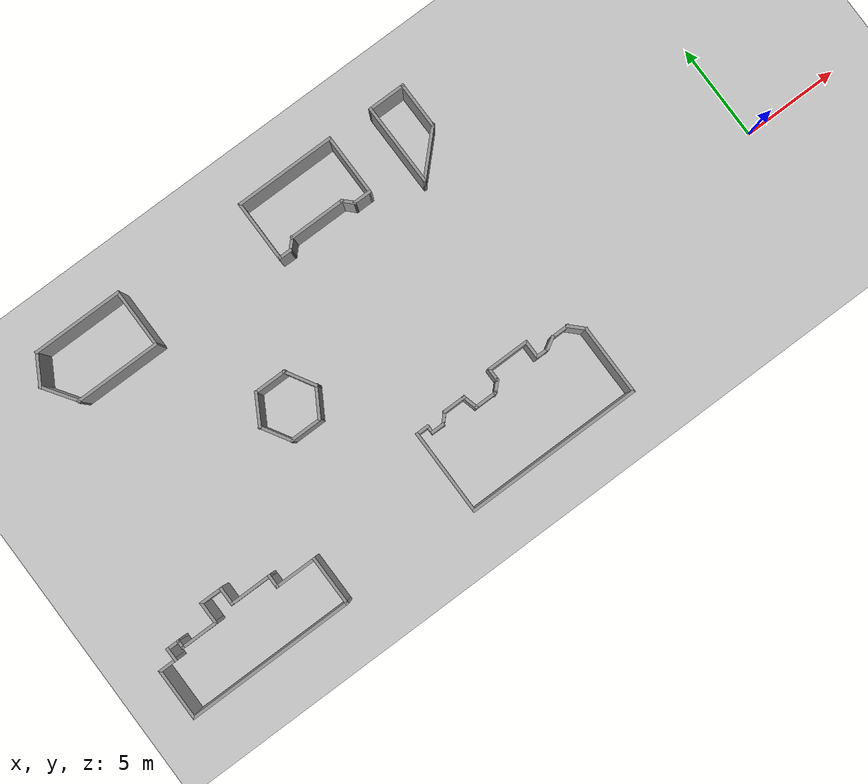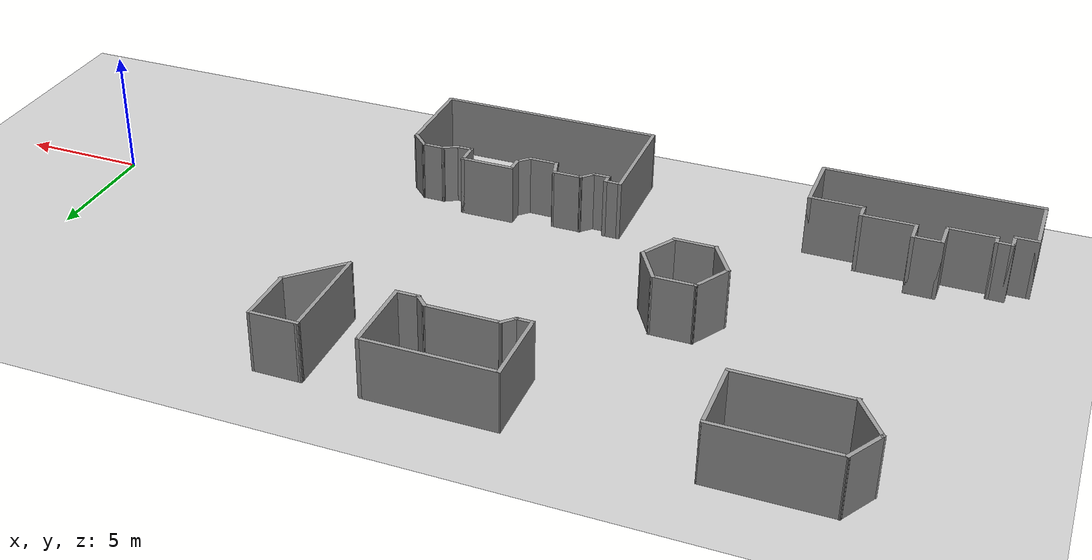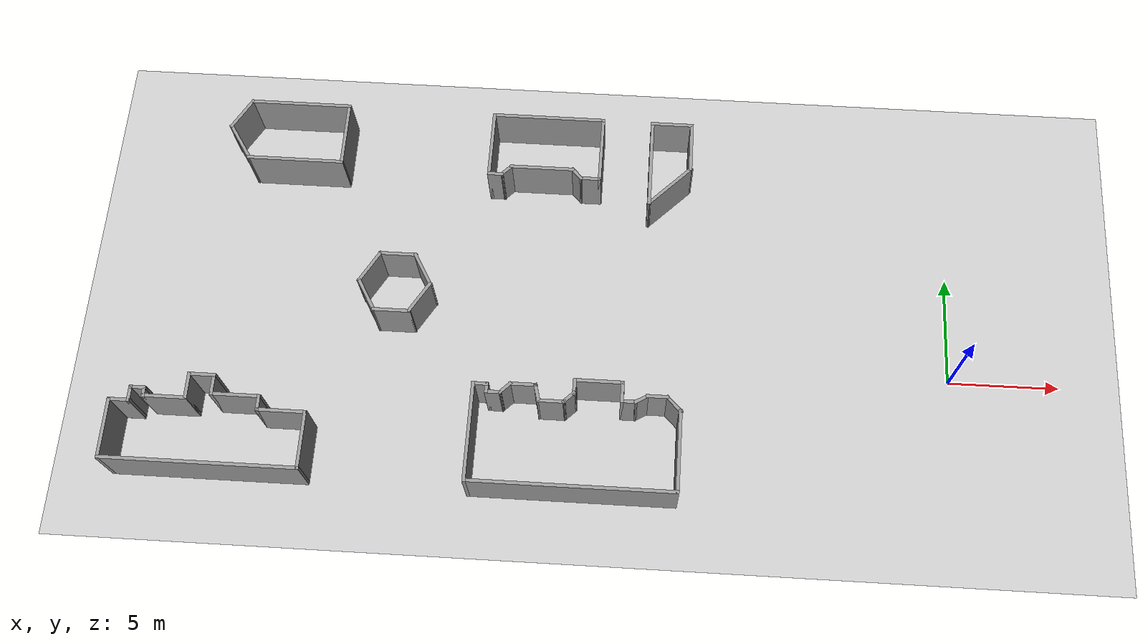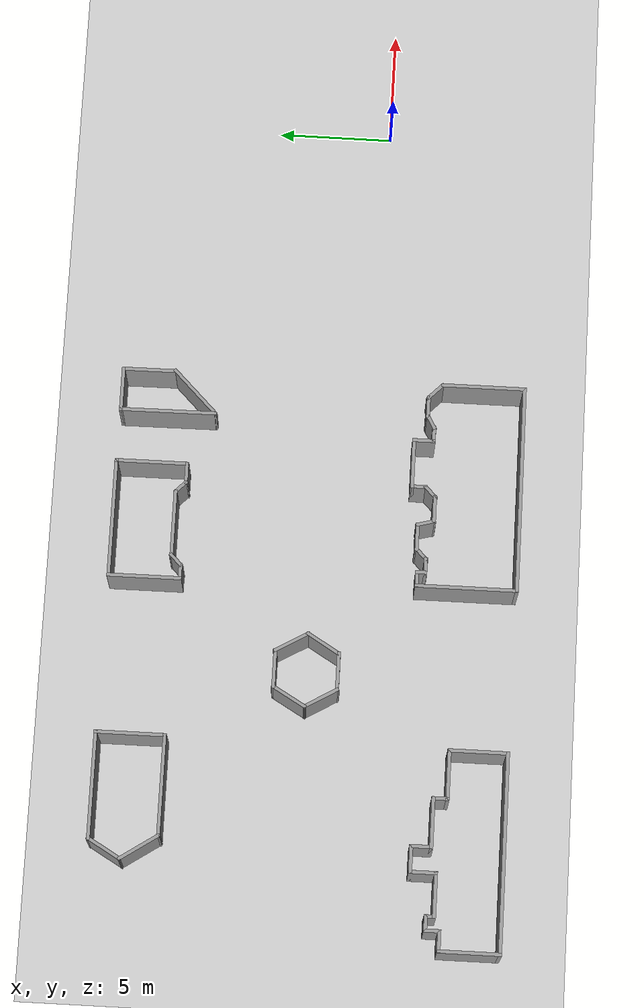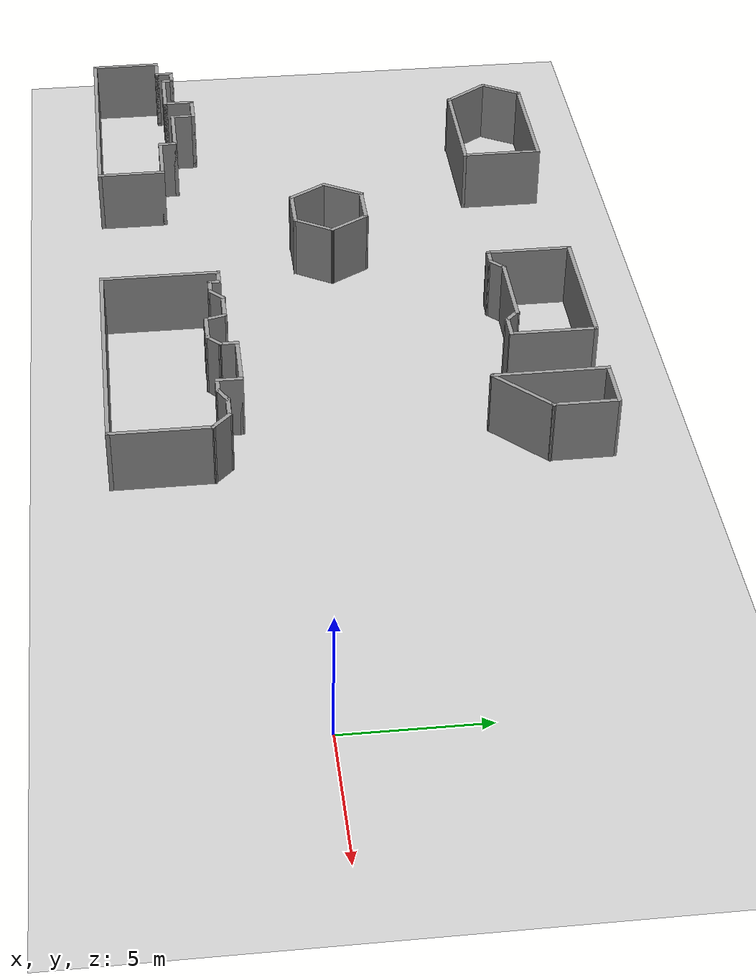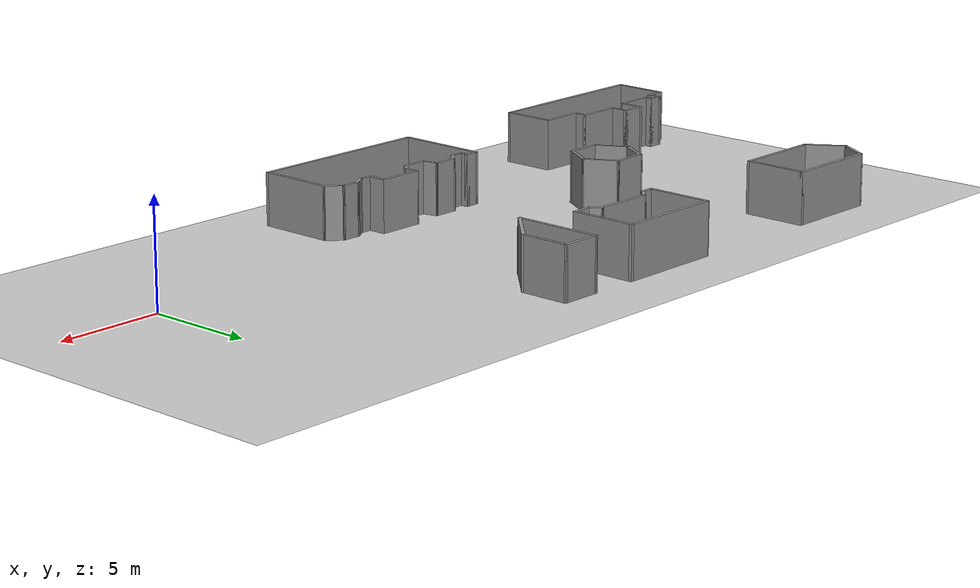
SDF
<sdf version="1.6">
 <world name="default">
  <model name="ground_plane">
   <static>1</static>
   <link name="link">
    <collision name="collision">
     <geometry><plane><normal>0 0 1</normal><size>100 100</size></plane></geometry>
     <surface><friction><ode><mu>100</mu><mu2>50</mu2></ode></friction></surface>
    </collision>
    <visual name="visual">
     <cast_shadows>0</cast_shadows>
     <geometry><plane><normal>0 0 1</normal><size>100 100</size></plane></geometry>
     <material>
      <script><uri>file://media/materials/scripts/gazebo.material</uri><name>Gazebo/Grey</name></script>
     </material>
    </visual>
   </link>
  </model>
  <model name="corridor1">
   <pose>-0.71562 2.39478 0 0 -0 0</pose>
   <link name="Wall_116">
    <collision name="Wall_116_Collision">
     <geometry><box><size>3.25 0.15 2.5</size></box></geometry>
     <pose>0 0 1.25 0 -0 0</pose>
    </collision>
    <visual name="Wall_116_Visual">
     <pose>0 0 1.25 0 -0 0</pose>
     <geometry><box><size>3.25 0.15 2.5</size></box></geometry>
     <material>
      <script><uri>file://media/materials/scripts/gazebo.material</uri><name>Gazebo/Grey</name></script>
      <ambient>1 1 1 1</ambient>
     </material>
     <meta><layer>0</layer></meta>
    </visual>
    <pose>-20.8032 7.35018 0 0 0 -1.5708</pose>
   </link>
   <link name="Wall_117">
    <collision name="Wall_117_Collision">
     <geometry><box><size>0.75 0.15 2.5</size></box></geometry>
     <pose>0 0 1.25 0 -0 0</pose>
    </collision>
    <visual name="Wall_117_Visual">
     <pose>0 0 1.25 0 -0 0</pose>
     <geometry><box><size>0.75 0.15 2.5</size></box></geometry>
     <material>
      <script><uri>file://media/materials/scripts/gazebo.material</uri><name>Gazebo/Grey</name></script>
      <ambient>1 1 1 1</ambient>
     </material>
     <meta><layer>0</layer></meta>
    </visual>
    <pose>-20.5032 5.80018 0 0 -0 0</pose>
   </link>
   <link name="Wall_118">
    <collision name="Wall_118_Collision">
     <geometry><box><size>0.75 0.15 2.5</size></box></geometry>
     <pose>0 0 1.25 0 -0 0</pose>
    </collision>
    <visual name="Wall_118_Visual">
     <pose>0 0 1.25 0 -0 0</pose>
     <geometry><box><size>0.75 0.15 2.5</size></box></geometry>
     <material>
      <script><uri>file://media/materials/scripts/gazebo.material</uri><name>Gazebo/Grey</name></script>
      <ambient>1 1 1 1</ambient>
     </material>
     <meta><layer>0</layer></meta>
    </visual>
    <pose>-19.991 6.01231 0 0 -0 0.785398</pose>
   </link>
   <link name="Wall_119">
    <collision name="Wall_119_Collision">
     <geometry><box><size>3 0.15 2.5</size></box></geometry>
     <pose>0 0 1.25 0 -0 0</pose>
    </collision>
    <visual name="Wall_119_Visual">
     <pose>0 0 1.25 0 -0 0</pose>
     <geometry><box><size>3 0.15 2.5</size></box></geometry>
     <material>
      <script><uri>file://media/materials/scripts/gazebo.material</uri><name>Gazebo/Grey</name></script>
      <ambient>1 1 1 1</ambient>
     </material>
     <meta><layer>0</layer></meta>
    </visual>
    <pose>-18.3539 6.22444 0 0 -0 0</pose>
   </link>
   <link name="Wall_120">
    <collision name="Wall_120_Collision">
     <geometry><box><size>0.75 0.15 2.5</size></box></geometry>
     <pose>0 0 1.25 0 -0 0</pose>
    </collision>
    <visual name="Wall_120_Visual">
     <pose>0 0 1.25 0 -0 0</pose>
     <geometry><box><size>0.75 0.15 2.5</size></box></geometry>
     <material>
      <script><uri>file://media/materials/scripts/gazebo.material</uri><name>Gazebo/Grey</name></script>
      <ambient>1 1 1 1</ambient>
     </material>
     <meta><layer>0</layer></meta>
    </visual>
    <pose>-16.7168 6.01231 0 0 0 -0.785398</pose>
   </link>
   <link name="Wall_123">
    <collision name="Wall_123_Collision">
     <geometry><box><size>1 0.15 2.5</size></box></geometry>
     <pose>0 0 1.25 0 -0 0</pose>
    </collision>
    <visual name="Wall_123_Visual">
     <pose>0 0 1.25 0 -0 0</pose>
     <geometry><box><size>1 0.15 2.5</size></box></geometry>
     <material>
      <script><uri>file://media/materials/scripts/gazebo.material</uri><name>Gazebo/Grey</name></script>
      <ambient>1 1 1 1</ambient>
     </material>
     <meta><layer>0</layer></meta>
    </visual>
    <pose>-16.0797 5.80018 0 0 -0 0</pose>
   </link>
   <link name="Wall_124">
    <collision name="Wall_124_Collision">
     <geometry><box><size>3.25 0.15 2.5</size></box></geometry>
     <pose>0 0 1.25 0 -0 0</pose>
    </collision>
    <visual name="Wall_124_Visual">
     <pose>0 0 1.25 0 -0 0</pose>
     <geometry><box><size>3.25 0.15 2.5</size></box></geometry>
     <material>
      <script><uri>file://media/materials/scripts/gazebo.material</uri><name>Gazebo/Grey</name></script>
      <ambient>1 1 1 1</ambient>
     </material>
     <meta><layer>0</layer></meta>
    </visual>
    <pose>-15.6547 7.35018 0 0 -0 1.5708</pose>
   </link>
   <link name="Wall_125">
    <collision name="Wall_125_Collision">
     <geometry><box><size>5.25 0.15 2.5</size></box></geometry>
     <pose>0 0 1.25 0 -0 0</pose>
    </collision>
    <visual name="Wall_125_Visual">
     <pose>0 0 1.25 0 -0 0</pose>
     <geometry><box><size>5.25 0.15 2.5</size></box></geometry>
     <material>
      <script><uri>file://media/materials/scripts/gazebo.material</uri><name>Gazebo/Grey</name></script>
      <ambient>1 1 1 1</ambient>
     </material>
     <meta><layer>0</layer></meta>
    </visual>
    <pose>-18.2047 8.90018 0 0 -0 3.14159</pose>
   </link>
   <link name="Wall_128">
    <collision name="Wall_128_Collision">
     <geometry><box><size>2 0.15 2.5</size></box></geometry>
     <pose>0 0 1.25 0 -0 0</pose>
    </collision>
    <visual name="Wall_128_Visual">
     <pose>0 0 1.25 0 -0 0</pose>
     <geometry><box><size>2 0.15 2.5</size></box></geometry>
     <material>
      <script><uri>file://media/materials/scripts/gazebo.material</uri><name>Gazebo/Grey</name></script>
      <ambient>1 1 1 1</ambient>
     </material>
     <meta><layer>0</layer></meta>
    </visual>
    <pose>-12.3978 8.8672 0 0 -0 3.14159</pose>
   </link>
   <link name="Wall_129">
    <collision name="Wall_129_Collision">
     <geometry><box><size>4.28996 0.15 2.5</size></box></geometry>
     <pose>0 0 1.25 0 -0 0</pose>
    </collision>
    <visual name="Wall_129_Visual">
     <pose>0 0 1.25 0 -0 0</pose>
     <geometry><box><size>4.28996 0.15 2.5</size></box></geometry>
     <material>
      <script><uri>file://media/materials/scripts/gazebo.material</uri><name>Gazebo/Grey</name></script>
      <ambient>1 1 1 1</ambient>
     </material>
     <meta><layer>0</layer></meta>
    </visual>
    <pose>-13.3129 6.79731 0 0 0 -1.56599</pose>
   </link>
   <link name="Wall_130">
    <collision name="Wall_130_Collision">
     <geometry><box><size>2.75 0.15 2.5</size></box></geometry>
     <pose>0 0 1.25 0 -0 0</pose>
    </collision>
    <visual name="Wall_130_Visual">
     <pose>0 0 1.25 0 -0 0</pose>
     <geometry><box><size>2.75 0.15 2.5</size></box></geometry>
     <material>
      <script><uri>file://media/materials/scripts/gazebo.material</uri><name>Gazebo/Grey</name></script>
      <ambient>1 1 1 1</ambient>
     </material>
     <meta><layer>0</layer></meta>
    </visual>
    <pose>-12.3638 5.64667 0 0 -0 0.785398</pose>
   </link>
   <link name="Wall_132">
    <collision name="Wall_132_Collision">
     <geometry><box><size>2.45147 0.15 2.5</size></box></geometry>
     <pose>0 0 1.25 0 -0 0</pose>
    </collision>
    <visual name="Wall_132_Visual">
     <pose>0 0 1.25 0 -0 0</pose>
     <geometry><box><size>2.45147 0.15 2.5</size></box></geometry>
     <material>
      <script><uri>file://media/materials/scripts/gazebo.material</uri><name>Gazebo/Grey</name></script>
      <ambient>1 1 1 1</ambient>
     </material>
     <meta><layer>0</layer></meta>
    </visual>
    <pose>-11.4687 7.71655 0 0 0 -1.56716</pose>
   </link>
   <link name="Wall_202">
    <collision name="Wall_202_Collision">
     <geometry><box><size>2.05612 0.15 2.5</size></box></geometry>
     <pose>0 0 1.25 0 -0 0</pose>
    </collision>
    <visual name="Wall_202_Visual">
     <pose>0 0 1.25 0 -0 0</pose>
     <geometry><box><size>2.05612 0.15 2.5</size></box></geometry>
     <material>
      <script><uri>file://media/materials/scripts/gazebo.material</uri><name>Gazebo/Grey</name></script>
      <ambient>1 1 1 1</ambient>
     </material>
     <meta><layer>0</layer></meta>
    </visual>
    <pose>-32.5914 6.7906 0 0 -0 2.15987</pose>
   </link>
   <link name="Wall_203">
    <collision name="Wall_203_Collision">
     <geometry><box><size>1.75 0.15 2.5</size></box></geometry>
     <pose>0 0 1.25 0 -0 0</pose>
    </collision>
    <visual name="Wall_203_Visual">
     <pose>0 0 1.25 0 -0 0</pose>
     <geometry><box><size>1.75 0.15 2.5</size></box></geometry>
     <material>
      <script><uri>file://media/materials/scripts/gazebo.material</uri><name>Gazebo/Grey</name></script>
      <ambient>1 1 1 1</ambient>
     </material>
     <meta><layer>0</layer></meta>
    </visual>
    <pose>-32.7209 8.27585 0 0 -0 1.0472</pose>
   </link>
   <link name="Wall_204">
    <collision name="Wall_204_Collision">
     <geometry><box><size>4.75 0.15 2.5</size></box></geometry>
     <pose>0 0 1.25 0 -0 0</pose>
    </collision>
    <visual name="Wall_204_Visual">
     <pose>0 0 1.25 0 -0 0</pose>
     <geometry><box><size>4.75 0.15 2.5</size></box></geometry>
     <material>
      <script><uri>file://media/materials/scripts/gazebo.material</uri><name>Gazebo/Grey</name></script>
      <ambient>1 1 1 1</ambient>
     </material>
     <meta><layer>0</layer></meta>
    </visual>
    <pose>-30.0209 8.96867 0 0 -0 0</pose>
   </link>
   <link name="Wall_205">
    <collision name="Wall_205_Collision">
     <geometry><box><size>3 0.15 2.5</size></box></geometry>
     <pose>0 0 1.25 0 -0 0</pose>
    </collision>
    <visual name="Wall_205_Visual">
     <pose>0 0 1.25 0 -0 0</pose>
     <geometry><box><size>3 0.15 2.5</size></box></geometry>
     <material>
      <script><uri>file://media/materials/scripts/gazebo.material</uri><name>Gazebo/Grey</name></script>
      <ambient>1 1 1 1</ambient>
     </material>
     <meta><layer>0</layer></meta>
    </visual>
    <pose>-27.7209 7.54367 0 0 0 -1.5708</pose>
   </link>
   <link name="Wall_207">
    <collision name="Wall_207_Collision">
     <geometry><box><size>4.5 0.15 2.5</size></box></geometry>
     <pose>0 0 1.25 0 -0 0</pose>
    </collision>
    <visual name="Wall_207_Visual">
     <pose>0 0 1.25 0 -0 0</pose>
     <geometry><box><size>4.5 0.15 2.5</size></box></geometry>
     <material>
      <script><uri>file://media/materials/scripts/gazebo.material</uri><name>Gazebo/Grey</name></script>
      <ambient>1 1 1 1</ambient>
     </material>
     <meta><layer>0</layer></meta>
    </visual>
    <pose>-29.9042 5.99817 0 0 -0 0</pose>
   </link>
   <link name="Wall_212">
    <collision name="Wall_212_Collision">
     <geometry><box><size>8.75 0.15 2.5</size></box></geometry>
     <pose>0 0 1.25 0 -0 0</pose>
    </collision>
    <visual name="Wall_212_Visual">
     <pose>0 0 1.25 0 -0 0</pose>
     <geometry><box><size>8.75 0.15 2.5</size></box></geometry>
     <material>
      <script><uri>file://media/materials/scripts/gazebo.material</uri><name>Gazebo/Grey</name></script>
      <ambient>1 1 1 1</ambient>
     </material>
     <meta><layer>0</layer></meta>
    </visual>
    <pose>-32.0209 -8.73133 0 0 -0 3.14159</pose>
   </link>
   <link name="Wall_213">
    <collision name="Wall_213_Collision">
     <geometry><box><size>2.75 0.15 2.5</size></box></geometry>
     <pose>0 0 1.25 0 -0 0</pose>
    </collision>
    <visual name="Wall_213_Visual">
     <pose>0 0 1.25 0 -0 0</pose>
     <geometry><box><size>2.75 0.15 2.5</size></box></geometry>
     <material>
      <script><uri>file://media/materials/scripts/gazebo.material</uri><name>Gazebo/Grey</name></script>
      <ambient>1 1 1 1</ambient>
     </material>
     <meta><layer>0</layer></meta>
    </visual>
    <pose>-36.3209 -7.43133 0 0 -0 1.5708</pose>
   </link>
   <link name="Wall_214">
    <collision name="Wall_214_Collision">
     <geometry><box><size>1 0.15 2.5</size></box></geometry>
     <pose>0 0 1.25 0 -0 0</pose>
    </collision>
    <visual name="Wall_214_Visual">
     <pose>0 0 1.25 0 -0 0</pose>
     <geometry><box><size>1 0.15 2.5</size></box></geometry>
     <material>
      <script><uri>file://media/materials/scripts/gazebo.material</uri><name>Gazebo/Grey</name></script>
      <ambient>1 1 1 1</ambient>
     </material>
     <meta><layer>0</layer></meta>
    </visual>
    <pose>-35.8959 -6.13133 0 0 -0 0</pose>
   </link>
   <link name="Wall_215">
    <collision name="Wall_215_Collision">
     <geometry><box><size>0.75 0.15 2.5</size></box></geometry>
     <pose>0 0 1.25 0 -0 0</pose>
    </collision>
    <visual name="Wall_215_Visual">
     <pose>0 0 1.25 0 -0 0</pose>
     <geometry><box><size>0.75 0.15 2.5</size></box></geometry>
     <material>
      <script><uri>file://media/materials/scripts/gazebo.material</uri><name>Gazebo/Grey</name></script>
      <ambient>1 1 1 1</ambient>
     </material>
     <meta><layer>0</layer></meta>
    </visual>
    <pose>-35.4709 -5.83133 0 0 -0 1.5708</pose>
   </link>
   <link name="Wall_216">
    <collision name="Wall_216_Collision">
     <geometry><box><size>0.75 0.15 2.5</size></box></geometry>
     <pose>0 0 1.25 0 -0 0</pose>
    </collision>
    <visual name="Wall_216_Visual">
     <pose>0 0 1.25 0 -0 0</pose>
     <geometry><box><size>0.75 0.15 2.5</size></box></geometry>
     <material>
      <script><uri>file://media/materials/scripts/gazebo.material</uri><name>Gazebo/Grey</name></script>
      <ambient>1 1 1 1</ambient>
     </material>
     <meta><layer>0</layer></meta>
    </visual>
    <pose>-35.1709 -5.53133 0 0 -0 0</pose>
   </link>
   <link name="Wall_217">
    <collision name="Wall_217_Collision">
     <geometry><box><size>0.5 0.15 2.5</size></box></geometry>
     <pose>0 0 1.25 0 -0 0</pose>
    </collision>
    <visual name="Wall_217_Visual">
     <pose>0 0 1.25 0 -0 0</pose>
     <geometry><box><size>0.5 0.15 2.5</size></box></geometry>
     <material>
      <script><uri>file://media/materials/scripts/gazebo.material</uri><name>Gazebo/Grey</name></script>
      <ambient>1 1 1 1</ambient>
     </material>
     <meta><layer>0</layer></meta>
    </visual>
    <pose>-34.8709 -5.70633 0 0 0 -1.5708</pose>
   </link>
   <link name="Wall_218">
    <collision name="Wall_218_Collision">
     <geometry><box><size>2 0.15 2.5</size></box></geometry>
     <pose>0 0 1.25 0 -0 0</pose>
    </collision>
    <visual name="Wall_218_Visual">
     <pose>0 0 1.25 0 -0 0</pose>
     <geometry><box><size>2 0.15 2.5</size></box></geometry>
     <material>
      <script><uri>file://media/materials/scripts/gazebo.material</uri><name>Gazebo/Grey</name></script>
      <ambient>1 1 1 1</ambient>
     </material>
     <meta><layer>0</layer></meta>
    </visual>
    <pose>-33.9459 -5.88133 0 0 -0 0</pose>
   </link>
   <link name="Wall_219">
    <collision name="Wall_219_Collision">
     <geometry><box><size>1.25 0.15 2.5</size></box></geometry>
     <pose>0 0 1.25 0 -0 0</pose>
    </collision>
    <visual name="Wall_219_Visual">
     <pose>0 0 1.25 0 -0 0</pose>
     <geometry><box><size>1.25 0.15 2.5</size></box></geometry>
     <material>
      <script><uri>file://media/materials/scripts/gazebo.material</uri><name>Gazebo/Grey</name></script>
      <ambient>1 1 1 1</ambient>
     </material>
     <meta><layer>0</layer></meta>
    </visual>
    <pose>-33.0209 -5.33133 0 0 -0 1.5708</pose>
   </link>
   <link name="Wall_220">
    <collision name="Wall_220_Collision">
     <geometry><box><size>1.25 0.15 2.5</size></box></geometry>
     <pose>0 0 1.25 0 -0 0</pose>
    </collision>
    <visual name="Wall_220_Visual">
     <pose>0 0 1.25 0 -0 0</pose>
     <geometry><box><size>1.25 0.15 2.5</size></box></geometry>
     <material>
      <script><uri>file://media/materials/scripts/gazebo.material</uri><name>Gazebo/Grey</name></script>
      <ambient>1 1 1 1</ambient>
     </material>
     <meta><layer>0</layer></meta>
    </visual>
    <pose>-32.4709 -4.78133 0 0 -0 0</pose>
   </link>
   <link name="Wall_221">
    <collision name="Wall_221_Collision">
     <geometry><box><size>1 0.15 2.5</size></box></geometry>
     <pose>0 0 1.25 0 -0 0</pose>
    </collision>
    <visual name="Wall_221_Visual">
     <pose>0 0 1.25 0 -0 0</pose>
     <geometry><box><size>1 0.15 2.5</size></box></geometry>
     <material>
      <script><uri>file://media/materials/scripts/gazebo.material</uri><name>Gazebo/Grey</name></script>
      <ambient>1 1 1 1</ambient>
     </material>
     <meta><layer>0</layer></meta>
    </visual>
    <pose>-31.9209 -5.20633 0 0 0 -1.5708</pose>
   </link>
   <link name="Wall_222">
    <collision name="Wall_222_Collision">
     <geometry><box><size>2.25 0.15 2.5</size></box></geometry>
     <pose>0 0 1.25 0 -0 0</pose>
    </collision>
    <visual name="Wall_222_Visual">
     <pose>0 0 1.25 0 -0 0</pose>
     <geometry><box><size>2.25 0.15 2.5</size></box></geometry>
     <material>
      <script><uri>file://media/materials/scripts/gazebo.material</uri><name>Gazebo/Grey</name></script>
      <ambient>1 1 1 1</ambient>
     </material>
     <meta><layer>0</layer></meta>
    </visual>
    <pose>-30.8709 -5.63133 0 0 -0 0</pose>
   </link>
   <link name="Wall_223">
    <collision name="Wall_223_Collision">
     <geometry><box><size>0.75 0.15 2.5</size></box></geometry>
     <pose>0 0 1.25 0 -0 0</pose>
    </collision>
    <visual name="Wall_223_Visual">
     <pose>0 0 1.25 0 -0 0</pose>
     <geometry><box><size>0.75 0.15 2.5</size></box></geometry>
     <material>
      <script><uri>file://media/materials/scripts/gazebo.material</uri><name>Gazebo/Grey</name></script>
      <ambient>1 1 1 1</ambient>
     </material>
     <meta><layer>0</layer></meta>
    </visual>
    <pose>-29.8209 -5.93133 0 0 0 -1.5708</pose>
   </link>
   <link name="Wall_224">
    <collision name="Wall_224_Collision">
     <geometry><box><size>2.25 0.15 2.5</size></box></geometry>
     <pose>0 0 1.25 0 -0 0</pose>
    </collision>
    <visual name="Wall_224_Visual">
     <pose>0 0 1.25 0 -0 0</pose>
     <geometry><box><size>2.25 0.15 2.5</size></box></geometry>
     <material>
      <script><uri>file://media/materials/scripts/gazebo.material</uri><name>Gazebo/Grey</name></script>
      <ambient>1 1 1 1</ambient>
     </material>
     <meta><layer>0</layer></meta>
    </visual>
    <pose>-28.7709 -6.23133 0 0 -0 0</pose>
   </link>
   <link name="Wall_226">
    <collision name="Wall_226_Collision">
     <geometry><box><size>2.65 0.15 2.5</size></box></geometry>
     <pose>0 0 1.25 0 -0 0</pose>
    </collision>
    <visual name="Wall_226_Visual">
     <pose>0 0 1.25 0 -0 0</pose>
     <geometry><box><size>2.65 0.15 2.5</size></box></geometry>
     <material>
      <script><uri>file://media/materials/scripts/gazebo.material</uri><name>Gazebo/Grey</name></script>
      <ambient>1 1 1 1</ambient>
     </material>
     <meta><layer>0</layer></meta>
    </visual>
    <pose>-27.7209 -7.48133 0 0 0 -1.5708</pose>
   </link>
   <link name="Wall_275">
    <collision name="Wall_275_Collision">
     <geometry><box><size>1.75 0.15 2.5</size></box></geometry>
     <pose>0 0 1.25 0 -0 0</pose>
    </collision>
    <visual name="Wall_275_Visual">
     <pose>0 0 1.25 0 -0 0</pose>
     <geometry><box><size>1.75 0.15 2.5</size></box></geometry>
     <material>
      <script><uri>file://media/materials/scripts/gazebo.material</uri><name>Gazebo/Grey</name></script>
      <ambient>1 1 1 1</ambient>
     </material>
     <meta><layer>0</layer></meta>
    </visual>
    <pose>-24.5496 1.47223 0 0 -0 0</pose>
   </link>
   <link name="Wall_276">
    <collision name="Wall_276_Collision">
     <geometry><box><size>1.75 0.15 2.5</size></box></geometry>
     <pose>0 0 1.25 0 -0 0</pose>
    </collision>
    <visual name="Wall_276_Visual">
     <pose>0 0 1.25 0 -0 0</pose>
     <geometry><box><size>1.75 0.15 2.5</size></box></geometry>
     <material>
      <script><uri>file://media/materials/scripts/gazebo.material</uri><name>Gazebo/Grey</name></script>
      <ambient>1 1 1 1</ambient>
     </material>
     <meta><layer>0</layer></meta>
    </visual>
    <pose>-23.3496 0.779414 0 0 0 -1.0472</pose>
   </link>
   <link name="Wall_277">
    <collision name="Wall_277_Collision">
     <geometry><box><size>1.70492 0.15 2.5</size></box></geometry>
     <pose>0 0 1.25 0 -0 0</pose>
    </collision>
    <visual name="Wall_277_Visual">
     <pose>0 0 1.25 0 -0 0</pose>
     <geometry><box><size>1.70492 0.15 2.5</size></box></geometry>
     <material>
      <script><uri>file://media/materials/scripts/gazebo.material</uri><name>Gazebo/Grey</name></script>
      <ambient>1 1 1 1</ambient>
     </material>
     <meta><layer>0</layer></meta>
    </visual>
    <pose>-23.3496 -0.580075 0 0 0 -2.11122</pose>
   </link>
   <link name="Wall_278">
    <collision name="Wall_278_Collision">
     <geometry><box><size>1.75 0.15 2.5</size></box></geometry>
     <pose>0 0 1.25 0 -0 0</pose>
    </collision>
    <visual name="Wall_278_Visual">
     <pose>0 0 1.25 0 -0 0</pose>
     <geometry><box><size>1.75 0.15 2.5</size></box></geometry>
     <material>
      <script><uri>file://media/materials/scripts/gazebo.material</uri><name>Gazebo/Grey</name></script>
      <ambient>1 1 1 1</ambient>
     </material>
     <meta><layer>0</layer></meta>
    </visual>
    <pose>-24.5496 -1.2729 0 0 -0 3.14159</pose>
   </link>
   <link name="Wall_280">
    <collision name="Wall_280_Collision">
     <geometry><box><size>1.75 0.15 2.5</size></box></geometry>
     <pose>0 0 1.25 0 -0 0</pose>
    </collision>
    <visual name="Wall_280_Visual">
     <pose>0 0 1.25 0 -0 0</pose>
     <geometry><box><size>1.75 0.15 2.5</size></box></geometry>
     <material>
      <script><uri>file://media/materials/scripts/gazebo.material</uri><name>Gazebo/Grey</name></script>
      <ambient>1 1 1 1</ambient>
     </material>
     <meta><layer>0</layer></meta>
    </visual>
    <pose>-25.7496 0.779414 0 0 0 -2.0944</pose>
   </link>
   <link name="Wall_281">
    <collision name="Wall_281_Collision">
     <geometry><box><size>1.72741 0.15 2.5</size></box></geometry>
     <pose>0 0 1.25 0 -0 0</pose>
    </collision>
    <visual name="Wall_281_Visual">
     <pose>0 0 1.25 0 -0 0</pose>
     <geometry><box><size>1.72741 0.15 2.5</size></box></geometry>
     <material>
      <script><uri>file://media/materials/scripts/gazebo.material</uri><name>Gazebo/Grey</name></script>
      <ambient>1 1 1 1</ambient>
     </material>
     <meta><layer>0</layer></meta>
    </visual>
    <pose>-25.7496 -0.593151 0 0 0 -1.03891</pose>
   </link>
   <link name="Wall_80">
    <collision name="Wall_80_Collision">
     <geometry><box><size>1.25 0.15 2.5</size></box></geometry>
     <pose>0 0 1.25 0 -0 0</pose>
    </collision>
    <visual name="Wall_80_Visual">
     <pose>0 0 1.25 0 -0 0</pose>
     <geometry><box><size>1.25 0.15 2.5</size></box></geometry>
     <material>
      <script><uri>file://media/materials/scripts/gazebo.material</uri><name>Gazebo/Grey</name></script>
      <ambient>1 1 1 1</ambient>
     </material>
     <meta><layer>0</layer></meta>
    </visual>
    <pose>-17.1178 -5.10602 0 0 -0 0</pose>
   </link>
   <link name="Wall_81">
    <collision name="Wall_81_Collision">
     <geometry><box><size>0.75 0.15 2.5</size></box></geometry>
     <pose>0 0 1.25 0 -0 0</pose>
    </collision>
    <visual name="Wall_81_Visual">
     <pose>0 0 1.25 0 -0 0</pose>
     <geometry><box><size>0.75 0.15 2.5</size></box></geometry>
     <material>
      <script><uri>file://media/materials/scripts/gazebo.material</uri><name>Gazebo/Grey</name></script>
      <ambient>1 1 1 1</ambient>
     </material>
     <meta><layer>0</layer></meta>
    </visual>
    <pose>-16.3556 -4.89389 0 0 -0 0.785398</pose>
   </link>
   <link name="Wall_82">
    <collision name="Wall_82_Collision">
     <geometry><box><size>0.75 0.15 2.5</size></box></geometry>
     <pose>0 0 1.25 0 -0 0</pose>
    </collision>
    <visual name="Wall_82_Visual">
     <pose>0 0 1.25 0 -0 0</pose>
     <geometry><box><size>0.75 0.15 2.5</size></box></geometry>
     <material>
      <script><uri>file://media/materials/scripts/gazebo.material</uri><name>Gazebo/Grey</name></script>
      <ambient>1 1 1 1</ambient>
     </material>
     <meta><layer>0</layer></meta>
    </visual>
    <pose>-16.1435 -4.38176 0 0 -0 1.5708</pose>
   </link>
   <link name="Wall_83">
    <collision name="Wall_83_Collision">
     <geometry><box><size>2.25 0.15 2.5</size></box></geometry>
     <pose>0 0 1.25 0 -0 0</pose>
    </collision>
    <visual name="Wall_83_Visual">
     <pose>0 0 1.25 0 -0 0</pose>
     <geometry><box><size>2.25 0.15 2.5</size></box></geometry>
     <material>
      <script><uri>file://media/materials/scripts/gazebo.material</uri><name>Gazebo/Grey</name></script>
      <ambient>1 1 1 1</ambient>
     </material>
     <meta><layer>0</layer></meta>
    </visual>
    <pose>-15.0935 -4.08176 0 0 -0 0</pose>
   </link>
   <link name="Wall_84">
    <collision name="Wall_84_Collision">
     <geometry><box><size>1 0.15 2.5</size></box></geometry>
     <pose>0 0 1.25 0 -0 0</pose>
    </collision>
    <visual name="Wall_84_Visual">
     <pose>0 0 1.25 0 -0 0</pose>
     <geometry><box><size>1 0.15 2.5</size></box></geometry>
     <material>
      <script><uri>file://media/materials/scripts/gazebo.material</uri><name>Gazebo/Grey</name></script>
      <ambient>1 1 1 1</ambient>
     </material>
     <meta><layer>0</layer></meta>
    </visual>
    <pose>-14.0435 -4.50676 0 0 0 -1.5708</pose>
   </link>
   <link name="Wall_85">
    <collision name="Wall_85_Collision">
     <geometry><box><size>0.75 0.15 2.5</size></box></geometry>
     <pose>0 0 1.25 0 -0 0</pose>
    </collision>
    <visual name="Wall_85_Visual">
     <pose>0 0 1.25 0 -0 0</pose>
     <geometry><box><size>0.75 0.15 2.5</size></box></geometry>
     <material>
      <script><uri>file://media/materials/scripts/gazebo.material</uri><name>Gazebo/Grey</name></script>
      <ambient>1 1 1 1</ambient>
     </material>
     <meta><layer>0</layer></meta>
    </visual>
    <pose>-13.7435 -4.93176 0 0 -0 0</pose>
   </link>
   <link name="Wall_86">
    <collision name="Wall_86_Collision">
     <geometry><box><size>0.75 0.15 2.5</size></box></geometry>
     <pose>0 0 1.25 0 -0 0</pose>
    </collision>
    <visual name="Wall_86_Visual">
     <pose>0 0 1.25 0 -0 0</pose>
     <geometry><box><size>0.75 0.15 2.5</size></box></geometry>
     <material>
      <script><uri>file://media/materials/scripts/gazebo.material</uri><name>Gazebo/Grey</name></script>
      <ambient>1 1 1 1</ambient>
     </material>
     <meta><layer>0</layer></meta>
    </visual>
    <pose>-13.1837 -4.78176 0 0 -0 0.523599</pose>
   </link>
   <link name="Wall_87">
    <collision name="Wall_87_Collision">
     <geometry><box><size>1 0.15 2.5</size></box></geometry>
     <pose>0 0 1.25 0 -0 0</pose>
    </collision>
    <visual name="Wall_87_Visual">
     <pose>0 0 1.25 0 -0 0</pose>
     <geometry><box><size>1 0.15 2.5</size></box></geometry>
     <material>
      <script><uri>file://media/materials/scripts/gazebo.material</uri><name>Gazebo/Grey</name></script>
      <ambient>1 1 1 1</ambient>
     </material>
     <meta><layer>0</layer></meta>
    </visual>
    <pose>-12.4989 -4.63176 0 0 -0 0</pose>
   </link>
   <link name="Wall_88">
    <collision name="Wall_88_Collision">
     <geometry><box><size>1 0.15 2.5</size></box></geometry>
     <pose>0 0 1.25 0 -0 0</pose>
    </collision>
    <visual name="Wall_88_Visual">
     <pose>0 0 1.25 0 -0 0</pose>
     <geometry><box><size>1 0.15 2.5</size></box></geometry>
     <material>
      <script><uri>file://media/materials/scripts/gazebo.material</uri><name>Gazebo/Grey</name></script>
      <ambient>1 1 1 1</ambient>
     </material>
     <meta><layer>0</layer></meta>
    </visual>
    <pose>-11.7734 -4.93228 0 0 0 -0.785398</pose>
   </link>
   <link name="Wall_89">
    <collision name="Wall_89_Collision">
     <geometry><box><size>3.75 0.15 2.5</size></box></geometry>
     <pose>0 0 1.25 0 -0 0</pose>
    </collision>
    <visual name="Wall_89_Visual">
     <pose>0 0 1.25 0 -0 0</pose>
     <geometry><box><size>3.75 0.15 2.5</size></box></geometry>
     <material>
      <script><uri>file://media/materials/scripts/gazebo.material</uri><name>Gazebo/Grey</name></script>
      <ambient>1 1 1 1</ambient>
     </material>
     <meta><layer>0</layer></meta>
    </visual>
    <pose>-11.4728 -7.0328 0 0 0 -1.5708</pose>
   </link>
   <link name="Wall_90">
    <collision name="Wall_90_Collision">
     <geometry><box><size>9.25 0.15 2.5</size></box></geometry>
     <pose>0 0 1.25 0 -0 0</pose>
    </collision>
    <visual name="Wall_90_Visual">
     <pose>0 0 1.25 0 -0 0</pose>
     <geometry><box><size>9.25 0.15 2.5</size></box></geometry>
     <material>
      <script><uri>file://media/materials/scripts/gazebo.material</uri><name>Gazebo/Grey</name></script>
      <ambient>1 1 1 1</ambient>
     </material>
     <meta><layer>0</layer></meta>
    </visual>
    <pose>-16.0228 -8.8328 0 0 -0 3.14159</pose>
   </link>
   <link name="Wall_91">
    <collision name="Wall_91_Collision">
     <geometry><box><size>4.5 0.15 2.5</size></box></geometry>
     <pose>0 0 1.25 0 -0 0</pose>
    </collision>
    <visual name="Wall_91_Visual">
     <pose>0 0 1.25 0 -0 0</pose>
     <geometry><box><size>4.5 0.15 2.5</size></box></geometry>
     <material>
      <script><uri>file://media/materials/scripts/gazebo.material</uri><name>Gazebo/Grey</name></script>
      <ambient>1 1 1 1</ambient>
     </material>
     <meta><layer>0</layer></meta>
    </visual>
    <pose>-20.5728 -6.6578 0 0 -0 1.5708</pose>
   </link>
   <link name="Wall_92">
    <collision name="Wall_92_Collision">
     <geometry><box><size>0.75 0.15 2.5</size></box></geometry>
     <pose>0 0 1.25 0 -0 0</pose>
    </collision>
    <visual name="Wall_92_Visual">
     <pose>0 0 1.25 0 -0 0</pose>
     <geometry><box><size>0.75 0.15 2.5</size></box></geometry>
     <material>
      <script><uri>file://media/materials/scripts/gazebo.material</uri><name>Gazebo/Grey</name></script>
      <ambient>1 1 1 1</ambient>
     </material>
     <meta><layer>0</layer></meta>
    </visual>
    <pose>-20.2728 -4.4828 0 0 -0 0</pose>
   </link>
   <link name="Wall_93">
    <collision name="Wall_93_Collision">
     <geometry><box><size>0.5 0.15 2.5</size></box></geometry>
     <pose>0 0 1.25 0 -0 0</pose>
    </collision>
    <visual name="Wall_93_Visual">
     <pose>0 0 1.25 0 -0 0</pose>
     <geometry><box><size>0.5 0.15 2.5</size></box></geometry>
     <material>
      <script><uri>file://media/materials/scripts/gazebo.material</uri><name>Gazebo/Grey</name></script>
      <ambient>1 1 1 1</ambient>
     </material>
     <meta><layer>0</layer></meta>
    </visual>
    <pose>-19.9728 -4.6578 0 0 0 -1.5708</pose>
   </link>
   <link name="Wall_94">
    <collision name="Wall_94_Collision">
     <geometry><box><size>0.75 0.15 2.5</size></box></geometry>
     <pose>0 0 1.25 0 -0 0</pose>
    </collision>
    <visual name="Wall_94_Visual">
     <pose>0 0 1.25 0 -0 0</pose>
     <geometry><box><size>0.75 0.15 2.5</size></box></geometry>
     <material>
      <script><uri>file://media/materials/scripts/gazebo.material</uri><name>Gazebo/Grey</name></script>
      <ambient>1 1 1 1</ambient>
     </material>
     <meta><layer>0</layer></meta>
    </visual>
    <pose>-19.6728 -4.8328 0 0 -0 0</pose>
   </link>
   <link name="Wall_95">
    <collision name="Wall_95_Collision">
     <geometry><box><size>0.75 0.15 2.5</size></box></geometry>
     <pose>0 0 1.25 0 -0 0</pose>
    </collision>
    <visual name="Wall_95_Visual">
     <pose>0 0 1.25 0 -0 0</pose>
     <geometry><box><size>0.75 0.15 2.5</size></box></geometry>
     <material>
      <script><uri>file://media/materials/scripts/gazebo.material</uri><name>Gazebo/Grey</name></script>
      <ambient>1 1 1 1</ambient>
     </material>
     <meta><layer>0</layer></meta>
    </visual>
    <pose>-19.1607 -4.62067 0 0 -0 0.785398</pose>
   </link>
   <link name="Wall_96">
    <collision name="Wall_96_Collision">
     <geometry><box><size>1.25 0.15 2.5</size></box></geometry>
     <pose>0 0 1.25 0 -0 0</pose>
    </collision>
    <visual name="Wall_96_Visual">
     <pose>0 0 1.25 0 -0 0</pose>
     <geometry><box><size>1.25 0.15 2.5</size></box></geometry>
     <material>
      <script><uri>file://media/materials/scripts/gazebo.material</uri><name>Gazebo/Grey</name></script>
      <ambient>1 1 1 1</ambient>
     </material>
     <meta><layer>0</layer></meta>
    </visual>
    <pose>-18.3986 -4.40853 0 0 -0 0</pose>
   </link>
   <link name="Wall_97">
    <collision name="Wall_97_Collision">
     <geometry><box><size>0.870544 0.15 2.5</size></box></geometry>
     <pose>0 0 1.25 0 -0 0</pose>
    </collision>
    <visual name="Wall_97_Visual">
     <pose>0 0 1.25 0 -0 0</pose>
     <geometry><box><size>0.870544 0.15 2.5</size></box></geometry>
     <material>
      <script><uri>file://media/materials/scripts/gazebo.material</uri><name>Gazebo/Grey</name></script>
      <ambient>1 1 1 1</ambient>
     </material>
     <meta><layer>0</layer></meta>
    </visual>
    <pose>-17.7582 -4.75728 0 0 0 -1.31714</pose>
   </link>
   <static>1</static>
  </model>
 </world>
</sdf>
